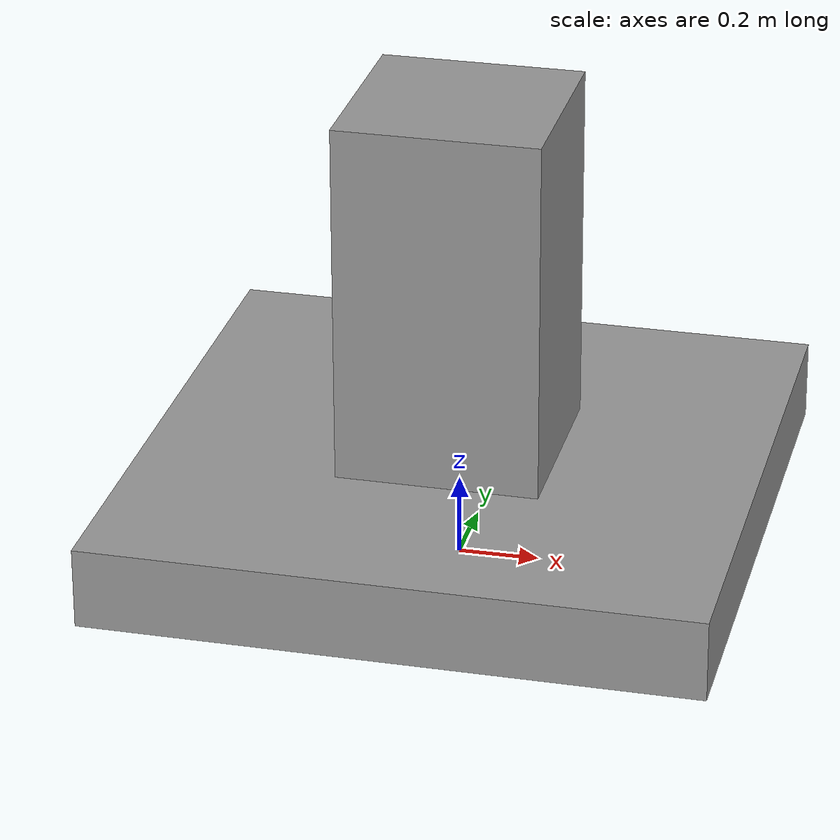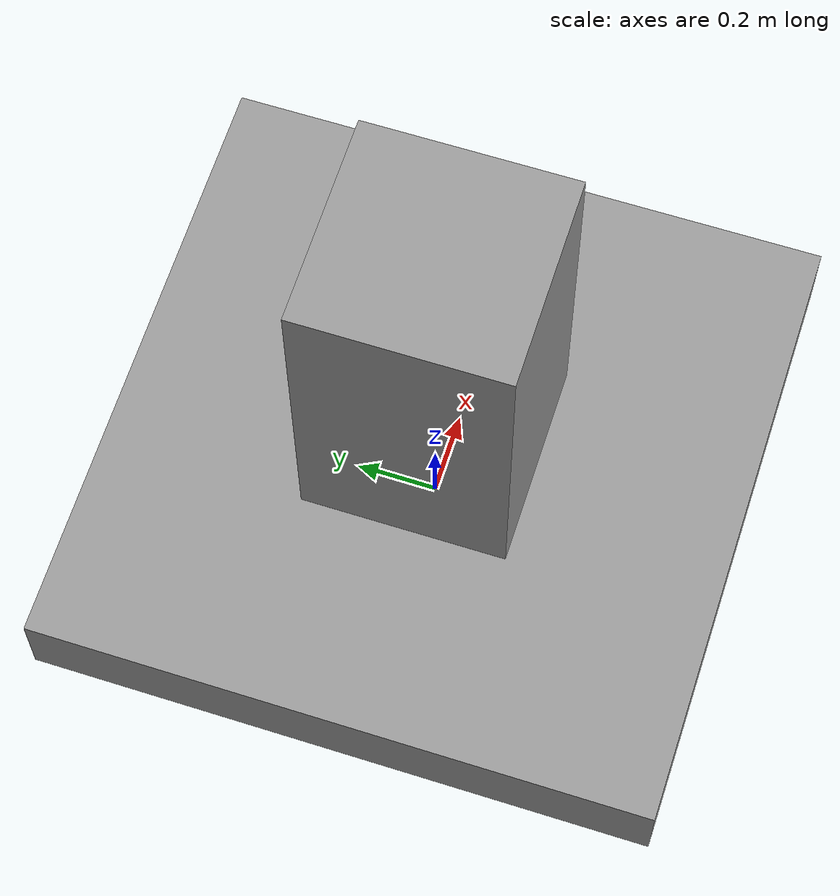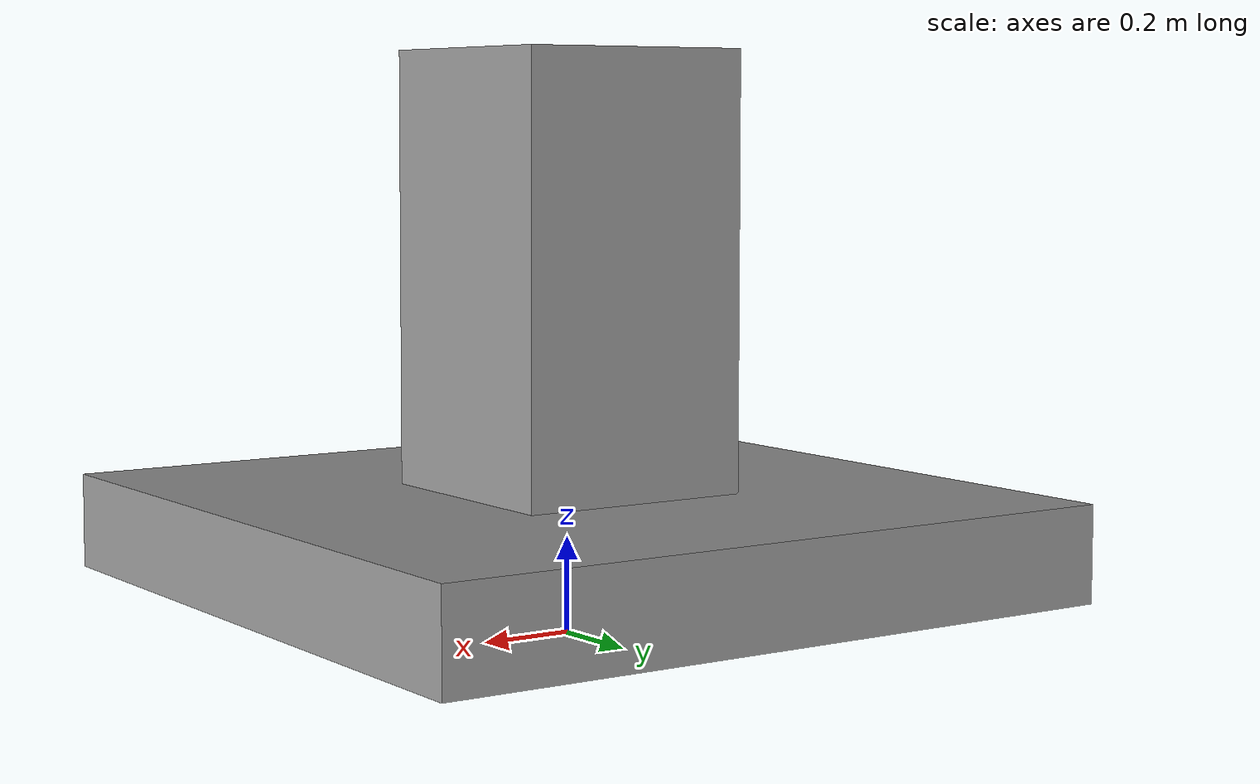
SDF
<?xml version='1.0'?>
<sdf version='1.6'>
  <model name='robot_base'>
    <link name='link_1'>
      <inertial>
        <mass>20</mass>
        <inertia>
          <ixx>4.16667</ixx>
          <ixy>0</ixy>
          <ixz>0</ixz>
          <iyy>4.16667</iyy>
          <iyz>0</iyz>
          <izz>7.5</izz>
        </inertia>
        <pose frame=''>0 0 0.2 0 -0 0</pose>
      </inertial>
      <pose frame=''>0 0 0 0 -0 0</pose>
      <gravity>1</gravity>
      <self_collide>0</self_collide>
      <kinematic>0</kinematic>
      <enable_wind>0</enable_wind>
      <visual name='visual'>
        <pose frame=''>0 0 0.2 0 -0 0</pose>
        <geometry>
          <box>
            <size>1.5 1.5 0.2</size>
          </box>
        </geometry>
        <material>
          <lighting>1</lighting>
          <script>
            <uri>file://media/materials/scripts/gazebo.material</uri>
            <name>Gazebo/Gray</name>
          </script>
          <shader type='vertex'>
            <normal_map>__default__</normal_map>
          </shader>
          <ambient>0.3 0.3 0.3 1</ambient>
          <diffuse>0.7 0.7 0.7 1</diffuse>
          <specular>0.01 0.01 0.01 1</specular>
          <emissive>0 0 0 1</emissive>
        </material>
        <transparency>0</transparency>
        <cast_shadows>1</cast_shadows>
      </visual>
      <collision name='collision'>
        <laser_retro>0</laser_retro>
        <max_contacts>10</max_contacts>
        <pose frame=''>0 0 0.2 0 -0 0</pose>
        <geometry>
          <box>
            <size>1.5 1.5 0.2</size>
          </box>
        </geometry>
        <surface>
          <friction>
            <ode>
              <mu>1</mu>
              <mu2>1</mu2>
              <fdir1>0 0 0</fdir1>
              <slip1>0</slip1>
              <slip2>0</slip2>
            </ode>
            <torsional>
              <coefficient>1</coefficient>
              <patch_radius>0</patch_radius>
              <surface_radius>0</surface_radius>
              <use_patch_radius>1</use_patch_radius>
              <ode>
                <slip>0</slip>
              </ode>
            </torsional>
          </friction>
          <bounce>
            <restitution_coefficient>0</restitution_coefficient>
            <threshold>1e+06</threshold>
          </bounce>
          <contact>
            <collide_without_contact>0</collide_without_contact>
            <collide_without_contact_bitmask>1</collide_without_contact_bitmask>
            <collide_bitmask>1</collide_bitmask>
            <ode>
              <soft_cfm>0</soft_cfm>
              <soft_erp>0.2</soft_erp>
              <kp>1e+13</kp>
              <kd>1</kd>
              <max_vel>0.01</max_vel>
              <min_depth>0</min_depth>
            </ode>
            <bullet>
              <split_impulse>1</split_impulse>
              <split_impulse_penetration_threshold>-0.01</split_impulse_penetration_threshold>
              <soft_cfm>0</soft_cfm>
              <soft_erp>0.2</soft_erp>
              <kp>1e+13</kp>
              <kd>1</kd>
            </bullet>
          </contact>
        </surface>
      </collision>
    </link>
    <link name='link_2'>
      <inertial>
        <mass>10</mass>
        <inertia>
          <ixx>1.12402</ixx>
          <ixy>0</ixy>
          <ixz>0</ixz>
          <iyy>1.01284</iyy>
          <iyz>0</iyz>
          <izz>0.470193</izz>
        </inertia>
        <pose frame=''>0 0 0.7 0 -0 0</pose>
      </inertial>
      <pose frame=''>0 0 0 0 -0 0</pose>
      <gravity>1</gravity>
      <self_collide>0</self_collide>
      <kinematic>0</kinematic>
      <enable_wind>0</enable_wind>
      <visual name='visual'>
        <pose frame=''>0 0 0.7 0 -0 0</pose>
        <geometry>
          <box>
            <size>0.5 0.5 1</size>
          </box>
        </geometry>
        <material>
          <lighting>1</lighting>
          <script>
            <uri>file://media/materials/scripts/gazebo.material</uri>
            <name>Gazebo/Grey</name>
          </script>
          <shader type='vertex'>
            <normal_map>__default__</normal_map>
          </shader>
          <ambient>0.3 0.3 0.3 1</ambient>
          <diffuse>0.7 0.7 0.7 1</diffuse>
          <specular>0.01 0.01 0.01 1</specular>
          <emissive>0 0 0 1</emissive>
        </material>
        <transparency>0</transparency>
        <cast_shadows>1</cast_shadows>
      </visual>
      <collision name='collision'>
        <laser_retro>0</laser_retro>
        <max_contacts>10</max_contacts>
        <pose frame=''>0 0 0.7 0 -0 0</pose>
        <geometry>
          <box>
            <size>0.5 0.5 1</size>
          </box>
        </geometry>
        <surface>
          <friction>
            <ode>
              <mu>1</mu>
              <mu2>1</mu2>
              <fdir1>0 0 0</fdir1>
              <slip1>0</slip1>
              <slip2>0</slip2>
            </ode>
            <torsional>
              <coefficient>1</coefficient>
              <patch_radius>0</patch_radius>
              <surface_radius>0</surface_radius>
              <use_patch_radius>1</use_patch_radius>
              <ode>
                <slip>0</slip>
              </ode>
            </torsional>
          </friction>
          <bounce>
            <restitution_coefficient>0</restitution_coefficient>
            <threshold>1e+06</threshold>
          </bounce>
          <contact>
            <collide_without_contact>0</collide_without_contact>
            <collide_without_contact_bitmask>1</collide_without_contact_bitmask>
            <collide_bitmask>1</collide_bitmask>
            <ode>
              <soft_cfm>0</soft_cfm>
              <soft_erp>0.2</soft_erp>
              <kp>1e+13</kp>
              <kd>1</kd>
              <max_vel>0.01</max_vel>
              <min_depth>0</min_depth>
            </ode>
            <bullet>
              <split_impulse>1</split_impulse>
              <split_impulse_penetration_threshold>-0.01</split_impulse_penetration_threshold>
              <soft_cfm>0</soft_cfm>
              <soft_erp>0.2</soft_erp>
              <kp>1e+13</kp>
              <kd>1</kd>
            </bullet>
          </contact>
        </surface>
      </collision>
    </link>
    <joint name='link_1_JOINT_0' type='fixed'>
      <parent>link_1</parent>
      <child>link_2</child>
      <pose frame=''>0 0 0 0 -0 0</pose>
      <physics>
        <ode>
          <limit>
            <cfm>0</cfm>
            <erp>0.2</erp>
          </limit>
          <suspension>
            <cfm>0</cfm>
            <erp>0.2</erp>
          </suspension>
        </ode>
      </physics>
    </joint>
    <static>0</static>
    <allow_auto_disable>1</allow_auto_disable>
  </model>
</sdf>
